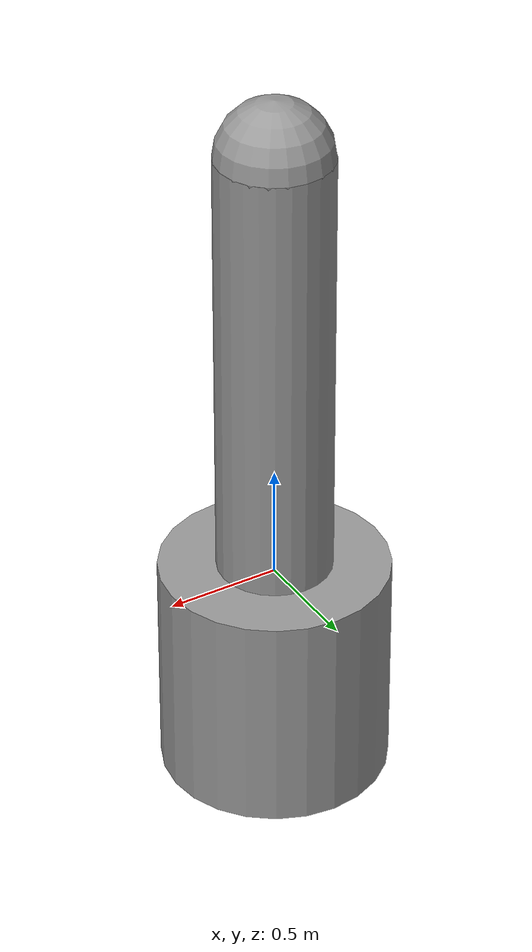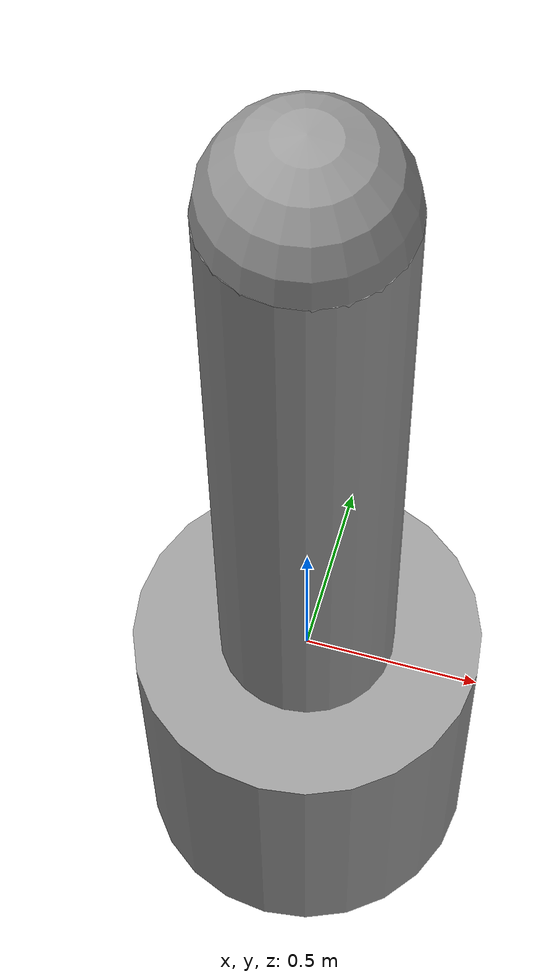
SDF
<?xml version='1.0'?>
<sdf version='1.7'>
  <model name='gps_base'>
  <gravity>true</gravity>
  <static>false</static>
    <link name='link'>
      <inertial>
        <mass>0.5</mass>
        <inertia>
          <ixx>0.0316667</ixx>
          <ixy>0</ixy>
          <ixz>0</ixz>
          <iyy>0.0316667</iyy>
          <iyz>0</iyz>
          <izz>0.0625</izz>
        </inertia>
        <pose>0 0 0 0 0 0</pose>
      </inertial>
      <self_collide>0</self_collide>
      <enable_wind>0</enable_wind>
      <kinematic>0</kinematic>
      <pose>0 0 0 0 0 0</pose>
      <gravity>1</gravity>
      <visual name='visual'>
        <geometry>
          <cylinder>
            <radius>0.5</radius>
            <length>1</length>
          </cylinder>
        </geometry>
        <material>
          <script>
            <name>Gazebo/Grey</name>
            <uri>file://media/materials/scripts/gazebo.material</uri>
          </script>
          <shader type='pixel'>
            <normal_map>__default__</normal_map>
          </shader>
          <ambient>0.3 0.3 0.3 1</ambient>
          <diffuse>0.7 0.7 0.7 1</diffuse>
          <specular>0.01 0.01 0.01 1</specular>
          <emissive>0 0 0 1</emissive>
        </material>
        <pose>0 0 -0.45 0 -0 0</pose>
        <transparency>0</transparency>
        <cast_shadows>1</cast_shadows>
      </visual>
      <collision name='collision'>
        <laser_retro>0</laser_retro>
        <max_contacts>10</max_contacts>
        <pose>0 0 -0.45 0 -0 0</pose>
        <geometry>
          <cylinder>
            <radius>0.5</radius>
            <length>1</length>
          </cylinder>
        </geometry>
        <surface>
          <friction>
            <ode>
              <mu>1</mu>
              <mu2>1</mu2>
              <fdir1>0 0 0</fdir1>
              <slip1>0</slip1>
              <slip2>0</slip2>
            </ode>
            <torsional>
              <coefficient>1</coefficient>
              <patch_radius>0</patch_radius>
              <surface_radius>0</surface_radius>
              <use_patch_radius>1</use_patch_radius>
              <ode>
                <slip>0</slip>
              </ode>
            </torsional>
          </friction>
          <bounce>
            <restitution_coefficient>0</restitution_coefficient>
            <threshold>1e+06</threshold>
          </bounce>
          <contact>
            <collide_without_contact>0</collide_without_contact>
            <collide_without_contact_bitmask>1</collide_without_contact_bitmask>
            <collide_bitmask>1</collide_bitmask>
            <ode>
              <soft_cfm>0</soft_cfm>
              <soft_erp>0.2</soft_erp>
              <kp>1e+13</kp>
              <kd>1</kd>
              <max_vel>0.01</max_vel>
              <min_depth>0</min_depth>
            </ode>
            <bullet>
              <split_impulse>1</split_impulse>
              <split_impulse_penetration_threshold>-0.01</split_impulse_penetration_threshold>
              <soft_cfm>0</soft_cfm>
              <soft_erp>0.2</soft_erp>
              <kp>1e+13</kp>
              <kd>1</kd>
            </bullet>
          </contact>
        </surface>
      </collision>
    </link>
    <link name='link_0'>
      <inertial>
        <mass>1</mass>
        <inertia>
          <ixx>0.145833</ixx>
          <ixy>0</ixy>
          <ixz>0</ixz>
          <iyy>0.145833</iyy>
          <iyz>0</iyz>
          <izz>0.125</izz>
        </inertia>
        <pose>0 0 0 0 0 0</pose>
      </inertial>
      <pose>0 0 0 0 0 0</pose>
      <gravity>1</gravity>
      <self_collide>0</self_collide>
      <kinematic>0</kinematic>
      <enable_wind>0</enable_wind>
      <visual name='visual'>
        <pose>0 0 1 0 -0 0</pose>
        <geometry>
          <cylinder>
            <radius>0.25</radius>
            <length>2</length>
          </cylinder>
        </geometry>
        <material>
          <lighting>1</lighting>
          <script>
            <uri>file://media/materials/scripts/gazebo.material</uri>
            <name>Gazebo/Grey</name>
          </script>
          <shader type='pixel'>
            <normal_map>__default__</normal_map>
          </shader>
          <ambient>0.3 0.3 0.3 1</ambient>
          <diffuse>0.7 0.7 0.7 1</diffuse>
          <specular>0.01 0.01 0.01 1</specular>
          <emissive>0 0 0 1</emissive>
        </material>
        <transparency>0</transparency>
        <cast_shadows>1</cast_shadows>
      </visual>
      <collision name='collision'>
        <laser_retro>0</laser_retro>
        <max_contacts>10</max_contacts>
        <pose>0 0 1 0 0 0</pose>
        <geometry>
          <cylinder>
            <radius>0.25</radius>
            <length>2</length>
          </cylinder>
        </geometry>
        <surface>
          <friction>
            <ode>
              <mu>1</mu>
              <mu2>1</mu2>
              <fdir1>0 0 0</fdir1>
              <slip1>0</slip1>
              <slip2>0</slip2>
            </ode>
            <torsional>
              <coefficient>1</coefficient>
              <patch_radius>0</patch_radius>
              <surface_radius>0</surface_radius>
              <use_patch_radius>1</use_patch_radius>
              <ode>
                <slip>0</slip>
              </ode>
            </torsional>
          </friction>
          <bounce>
            <restitution_coefficient>0</restitution_coefficient>
            <threshold>1e+06</threshold>
          </bounce>
          <contact>
            <collide_without_contact>0</collide_without_contact>
            <collide_without_contact_bitmask>1</collide_without_contact_bitmask>
            <collide_bitmask>1</collide_bitmask>
            <ode>
              <soft_cfm>0</soft_cfm>
              <soft_erp>0.2</soft_erp>
              <kp>1e+13</kp>
              <kd>1</kd>
              <max_vel>0.01</max_vel>
              <min_depth>0</min_depth>
            </ode>
            <bullet>
              <split_impulse>1</split_impulse>
              <split_impulse_penetration_threshold>-0.01</split_impulse_penetration_threshold>
              <soft_cfm>0</soft_cfm>
              <soft_erp>0.2</soft_erp>
              <kp>1e+13</kp>
              <kd>1</kd>
            </bullet>
          </contact>
        </surface>
      </collision>

      <!-- GPS Sensor -->
      <sensor name="my_base_gps" type="gps">
          <always_on>true</always_on>
          <update_rate>20</update_rate>
          <gps>
            <position_sensing>
              <horizontal>
                <noise type="gaussian">
                  <mean>0.0</mean>
                  <stddev>2e-4</stddev>
                </noise>
              </horizontal>
              <vertical>
                <noise type="gaussian">
                  <mean>0.0</mean>
                  <stddev>2e-4</stddev>
                </noise>
              </vertical>
            </position_sensing>
          </gps>
          <plugin name="base_gps" filename="libgazebo_ros_gps_sensor.so">
            <ros>
              <namespace>/gps_base</namespace>
              <remapping>~/out:=pos</remapping>
            </ros>
          </plugin>
        </sensor>

    </link>
    <link name='link_0_0'>
      <inertial>
        <mass>1</mass>
        <inertia>
          <ixx>0.1</ixx>
          <ixy>0</ixy>
          <ixz>0</ixz>
          <iyy>0.1</iyy>
          <iyz>0</iyz>
          <izz>0.1</izz>
        </inertia>
        <pose>0 0 0 0 -0 0</pose>
      </inertial>
      <pose>0 0 2 -1e-06 -0 -0.002459</pose>
      <gravity>1</gravity>
      <self_collide>0</self_collide>
      <kinematic>0</kinematic>
      <enable_wind>0</enable_wind>
      <visual name='visual'>
        <pose>0 0 0 0 -0 0</pose>
        <geometry>
          <sphere>
            <radius>0.25</radius>
          </sphere>
        </geometry>
        <material>
          <lighting>1</lighting>
          <script>
            <uri>file://media/materials/scripts/gazebo.material</uri>
            <name>Gazebo/Grey</name>
          </script>
          <shader type='pixel'>
            <normal_map>__default__</normal_map>
          </shader>
          <ambient>0.3 0.3 0.3 1</ambient>
          <diffuse>0.7 0.7 0.7 1</diffuse>
          <specular>0.01 0.01 0.01 1</specular>
          <emissive>0 0 0 1</emissive>
        </material>
        <transparency>0</transparency>
        <cast_shadows>1</cast_shadows>
      </visual>
      <collision name='collision'>
        <laser_retro>0</laser_retro>
        <max_contacts>10</max_contacts>
        <pose>0 0 0 0 -0 0</pose>
        <geometry>
          <sphere>
            <radius>0.25</radius>
          </sphere>
        </geometry>
        <surface>
          <friction>
            <ode>
              <mu>1</mu>
              <mu2>1</mu2>
              <fdir1>0 0 0</fdir1>
              <slip1>0</slip1>
              <slip2>0</slip2>
            </ode>
            <torsional>
              <coefficient>1</coefficient>
              <patch_radius>0</patch_radius>
              <surface_radius>0</surface_radius>
              <use_patch_radius>1</use_patch_radius>
              <ode>
                <slip>0</slip>
              </ode>
            </torsional>
          </friction>
          <bounce>
            <restitution_coefficient>0</restitution_coefficient>
            <threshold>1e+06</threshold>
          </bounce>
          <contact>
            <collide_without_contact>0</collide_without_contact>
            <collide_without_contact_bitmask>1</collide_without_contact_bitmask>
            <collide_bitmask>1</collide_bitmask>
            <ode>
              <soft_cfm>0</soft_cfm>
              <soft_erp>0.2</soft_erp>
              <kp>1e+13</kp>
              <kd>1</kd>
              <max_vel>0.01</max_vel>
              <min_depth>0</min_depth>
            </ode>
            <bullet>
              <split_impulse>1</split_impulse>
              <split_impulse_penetration_threshold>-0.01</split_impulse_penetration_threshold>
              <soft_cfm>0</soft_cfm>
              <soft_erp>0.2</soft_erp>
              <kp>1e+13</kp>
              <kd>1</kd>
            </bullet>
          </contact>
        </surface>
      </collision>
    </link>
    <joint name='link_0_JOINT_0' type='fixed'>
      <parent>link_0</parent>
      <child>link_0_0</child>
      <pose>0 0 0 0 -0 0</pose>
      <physics>
        <ode>
          <limit>
            <cfm>0</cfm>
            <erp>0.2</erp>
          </limit>
          <suspension>
            <cfm>0</cfm>
            <erp>0.2</erp>
          </suspension>
        </ode>
      </physics>
    </joint>
    <joint name='link_JOINT_0' type='fixed'>
      <parent>link</parent>
      <child>link_0</child>
      <pose>0 0 0 0 -0 0</pose>
      <physics>
        <ode>
          <limit>
            <cfm>0</cfm>
            <erp>0.2</erp>
          </limit>
          <suspension>
            <cfm>0</cfm>
            <erp>0.2</erp>
          </suspension>
        </ode>
      </physics>
    </joint>
    <static>1</static>
    <allow_auto_disable>1</allow_auto_disable>
  </model>
</sdf>
